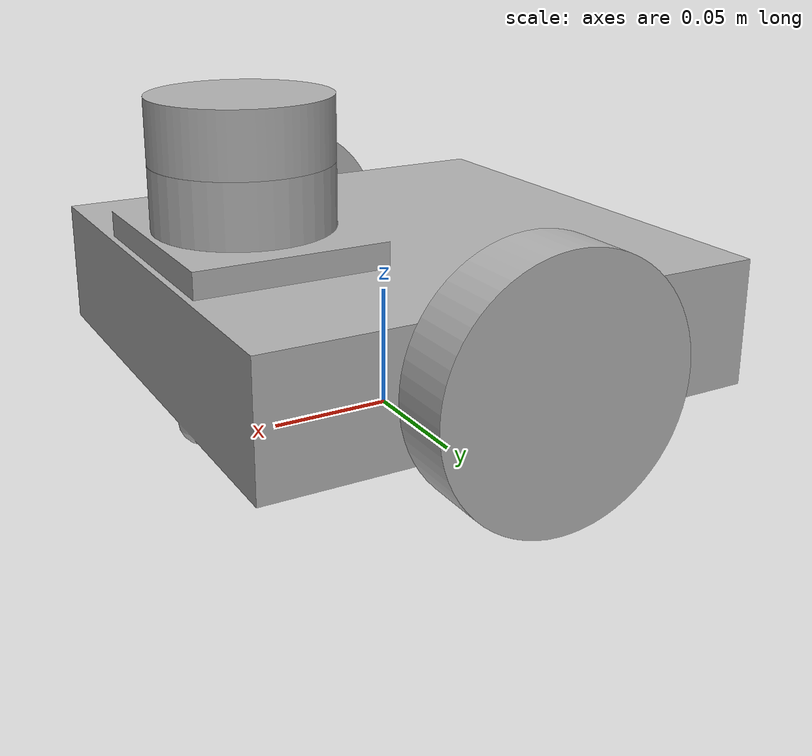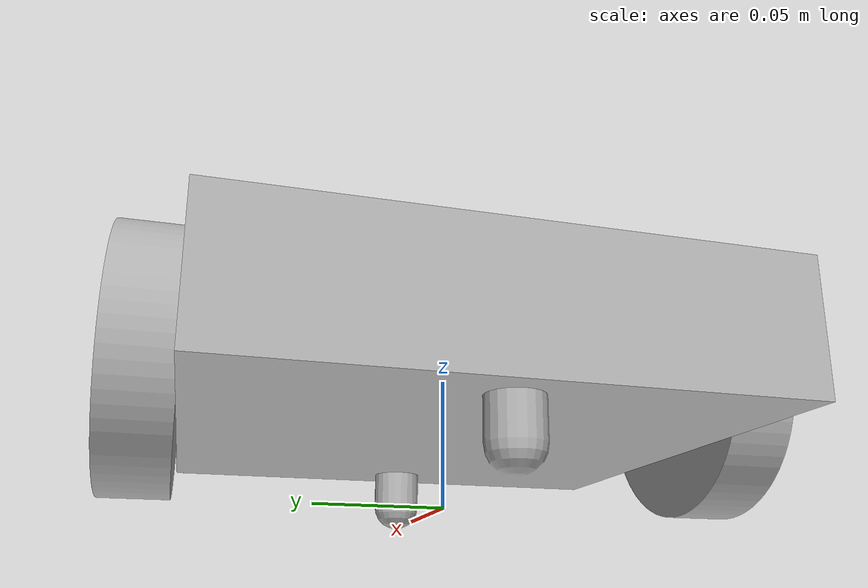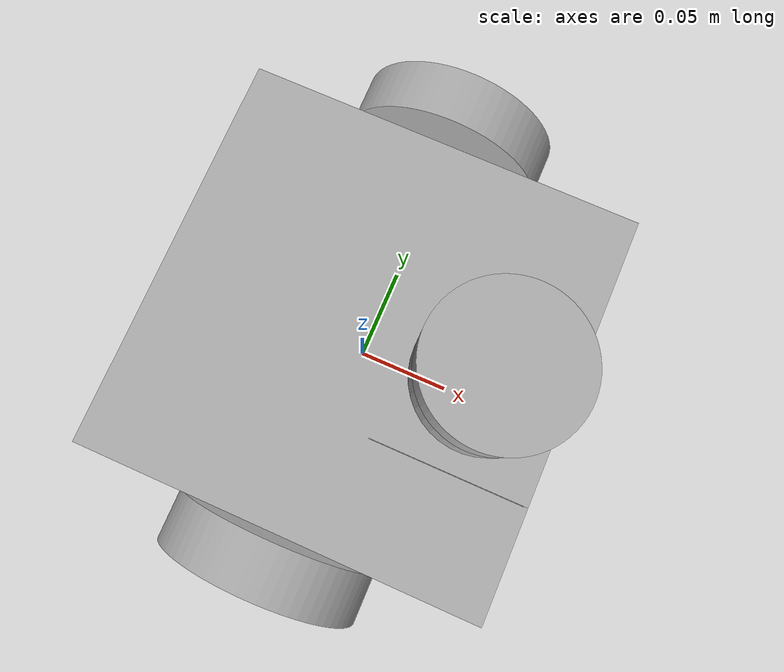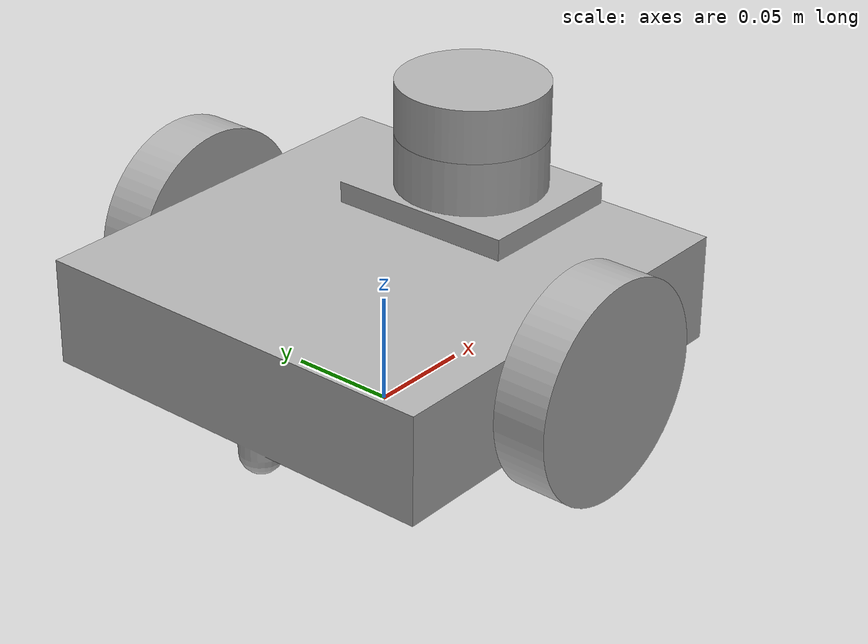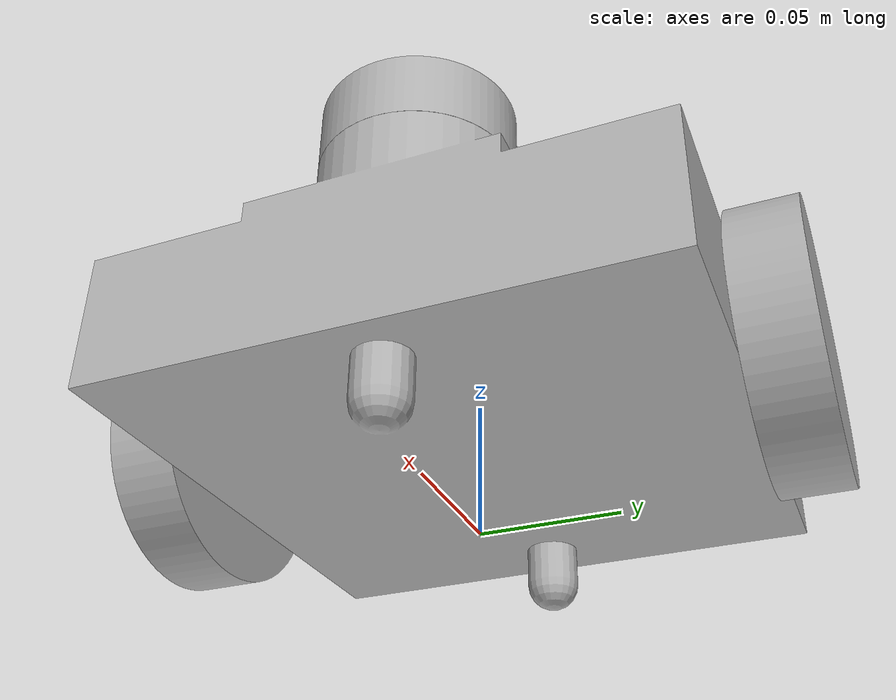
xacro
<?xml version="1.0" ?>
<robot name="practice" xmlns:xacro="http://www.ros.org/wiki/xacro">

<xacro:include filename="$(find practice_description)/urdf/materials.xacro" />
<xacro:include filename="$(find practice_description)/urdf/practice.trans" />
<xacro:include filename="$(find practice_description)/urdf/practice.gazebo" />
<link name="base_link">
  <inertial>
    <origin xyz="0.004511350950570008 0.0 0.052804115668456025" rpy="0 0 0"/>
    <mass value="2.3079643337726483"/>
    <inertia ixx="0.00789" iyy="0.008545" izz="0.014948" ixy="0.0" iyz="-0.0" ixz="-0.00039"/>
  </inertial>
  <visual>
    <origin xyz="0 0 0" rpy="0 0 0"/>
    <geometry>
      <mesh filename="package://practice_description/meshes/base_link.stl" scale="0.001 0.001 0.001"/>
    </geometry>
    <material name="silver"/>
  </visual>
  <collision>
    <origin xyz="0 0 0" rpy="0 0 0"/>
    <geometry>
      <mesh filename="package://practice_description/meshes/base_link.stl" scale="0.001 0.001 0.001"/>
    </geometry>
  </collision>
</link>

<link name="right_wheel_1">
  <inertial>
    <origin xyz="-5.790023100122029e-18 -0.012499999999999997 0.0" rpy="0 0 0"/>
    <mass value="0.1826050729899067"/>
    <inertia ixx="0.000124" iyy="0.000228" izz="0.000124" ixy="-0.0" iyz="0.0" ixz="0.0"/>
  </inertial>
  <visual>
    <origin xyz="-0.0 0.1 -0.05" rpy="0 0 0"/>
    <geometry>
      <mesh filename="package://practice_description/meshes/right_wheel_1.stl" scale="0.001 0.001 0.001"/>
    </geometry>
    <material name="silver"/>
  </visual>
  <collision>
    <origin xyz="-0.0 0.1 -0.05" rpy="0 0 0"/>
    <geometry>
      <mesh filename="package://practice_description/meshes/right_wheel_1.stl" scale="0.001 0.001 0.001"/>
    </geometry>
  </collision>
</link>

<link name="left_wheel_1">
  <inertial>
    <origin xyz="-5.790023100122029e-18 0.012499999999999997 0.0" rpy="0 0 0"/>
    <mass value="0.1826050729899067"/>
    <inertia ixx="0.000124" iyy="0.000228" izz="0.000124" ixy="0.0" iyz="-0.0" ixz="0.0"/>
  </inertial>
  <visual>
    <origin xyz="-0.0 -0.1 -0.05" rpy="0 0 0"/>
    <geometry>
      <mesh filename="package://practice_description/meshes/left_wheel_1.stl" scale="0.001 0.001 0.001"/>
    </geometry>
    <material name="silver"/>
  </visual>
  <collision>
    <origin xyz="-0.0 -0.1 -0.05" rpy="0 0 0"/>
    <geometry>
      <mesh filename="package://practice_description/meshes/left_wheel_1.stl" scale="0.001 0.001 0.001"/>
    </geometry>
  </collision>
</link>

<link name="lidar_1">
  <inertial>
    <origin xyz="0.0 0.0 0.012499999999999997" rpy="0 0 0"/>
    <mass value="0.7552585088770711"/>
    <inertia ixx="0.000271" iyy="0.000271" izz="0.000463" ixy="0.0" iyz="0.0" ixz="0.0"/>
  </inertial>
  <visual>
    <origin xyz="-0.06 -0.0 -0.11" rpy="0 0 0"/>
    <geometry>
      <mesh filename="package://practice_description/meshes/lidar_1.stl" scale="0.001 0.001 0.001"/>
    </geometry>
    <material name="silver"/>
  </visual>
  <collision>
    <origin xyz="-0.06 -0.0 -0.11" rpy="0 0 0"/>
    <geometry>
      <mesh filename="package://practice_description/meshes/lidar_1.stl" scale="0.001 0.001 0.001"/>
    </geometry>
  </collision>
</link>

<joint name="Rev1" type="continuous">
  <origin xyz="0.0 -0.1 0.05" rpy="0 0 0"/>
  <parent link="base_link"/>
  <child link="right_wheel_1"/>
  <axis xyz="0.0 -1.0 0.0"/>
</joint>

<joint name="Rev2" type="continuous">
  <origin xyz="0.0 0.1 0.05" rpy="0 0 0"/>
  <parent link="base_link"/>
  <child link="left_wheel_1"/>
  <axis xyz="0.0 1.0 0.0"/>
</joint>

<joint name="Rigid3" type="fixed">
  <origin xyz="0.06 0.0 0.11" rpy="0 0 0"/>
  <parent link="base_link"/>
  <child link="lidar_1"/>
</joint>

</robot>

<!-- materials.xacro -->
<robot name="practice" xmlns:xacro="http://www.ros.org/wiki/xacro" >

<material name="silver">
  <color rgba="0.700 0.700 0.700 1.000"/>
</material>

</robot>

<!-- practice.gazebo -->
<robot name="practice" xmlns:xacro="http://www.ros.org/wiki/xacro" >

<xacro:property name="body_color" value="Gazebo/Silver" />

<gazebo>
  <plugin name="control" filename="libgazebo_ros_control.so"/>
</gazebo>
<gazebo reference="base_link">
  <material>${body_color}</material>
  <mu1>0.2</mu1>
  <mu2>0.2</mu2>
  <selfCollide>true</selfCollide>
  <gravity>true</gravity>
</gazebo>

<gazebo reference="right_wheel_1">
  <material>${body_color}</material>
  <mu1>0.2</mu1>
  <mu2>0.2</mu2>
  <selfCollide>true</selfCollide>
</gazebo>

<gazebo reference="left_wheel_1">
  <material>${body_color}</material>
  <mu1>0.2</mu1>
  <mu2>0.2</mu2>
  <selfCollide>true</selfCollide>
</gazebo>

<gazebo reference="lidar_1">
  <material>${body_color}</material>
  <mu1>0.2</mu1>
  <mu2>0.2</mu2>
  <selfCollide>true</selfCollide>
</gazebo>

</robot>
